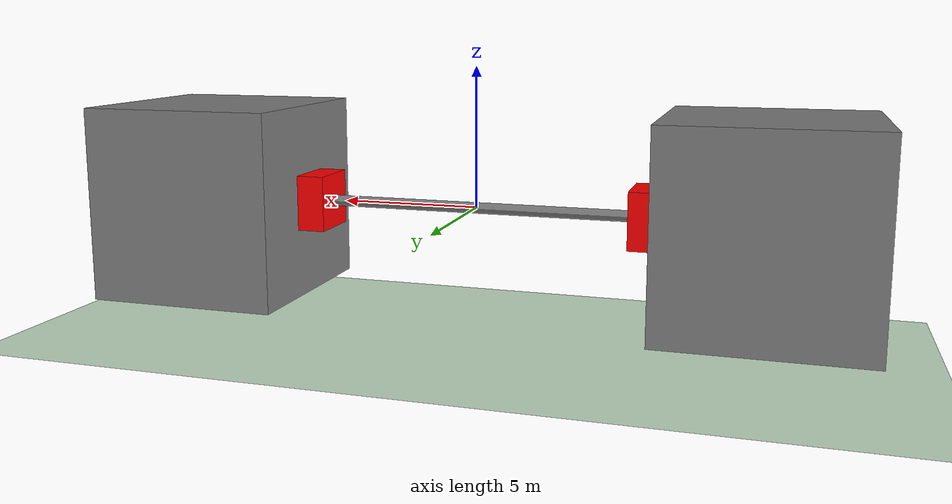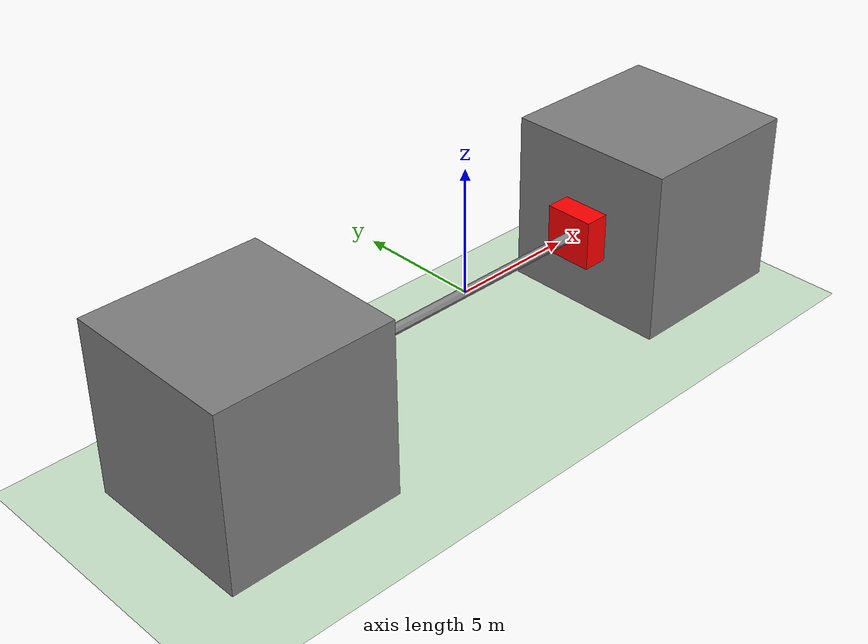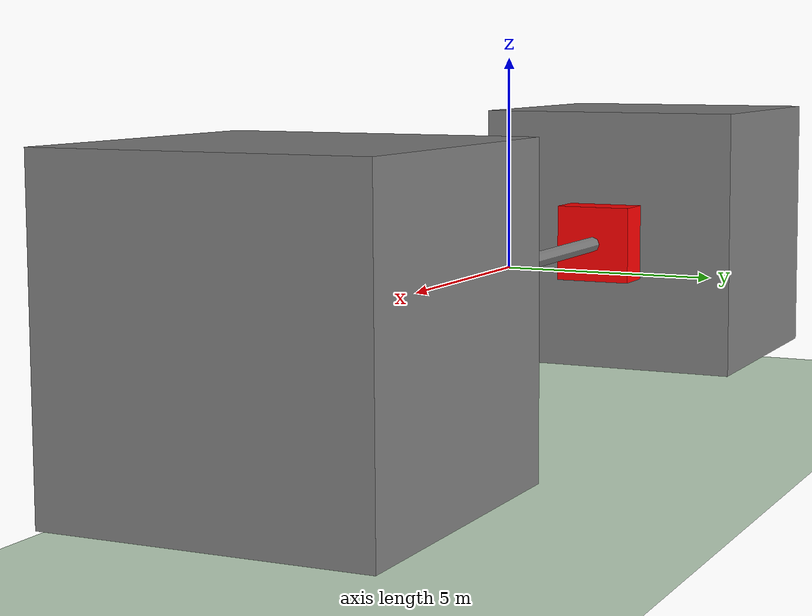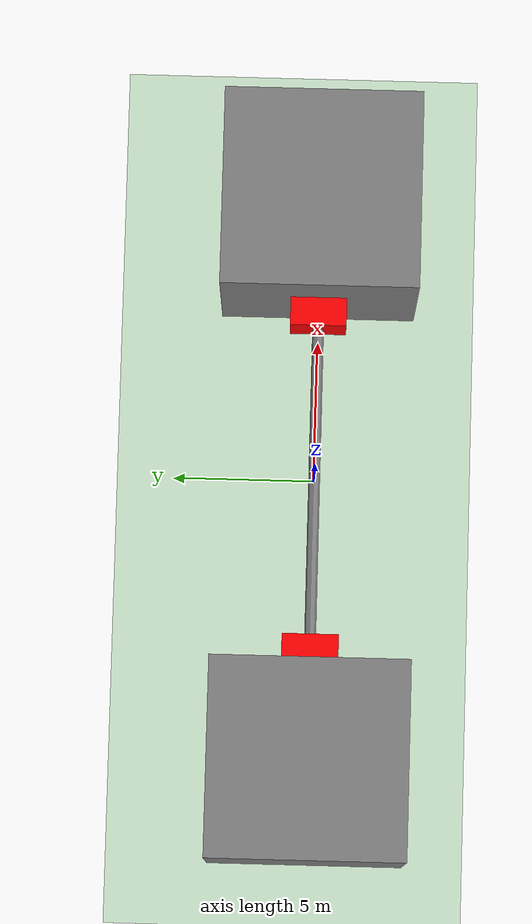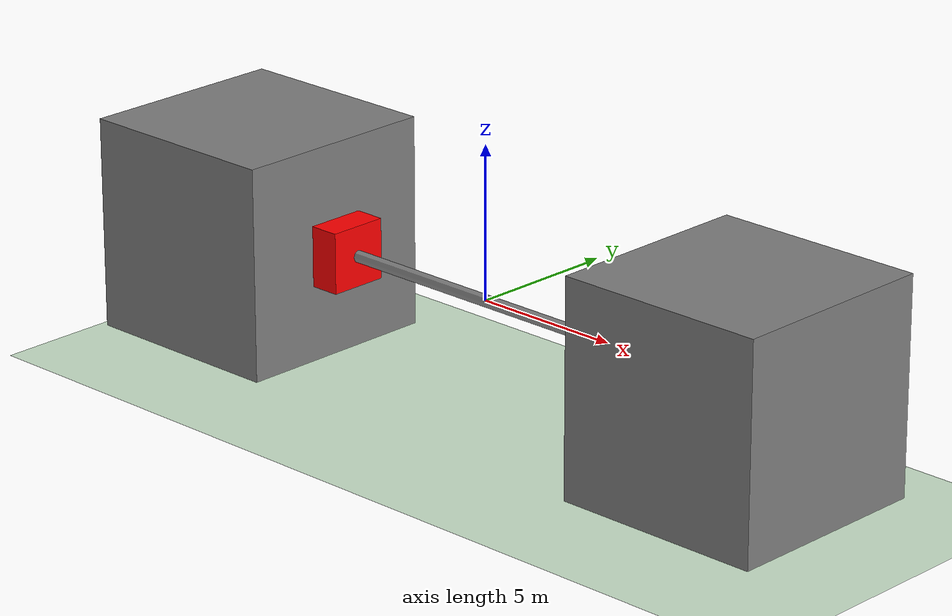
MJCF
<mujoco model="TT (v1.31)">
    <compiler angle="degree" coordinate="local" inertiafromgeom="true">
        <lengthrange timestep="0.001"/>
    </compiler>

    <option timestep="0.001"
            gravity="0 0 -9.81"
            solver="Newton"
            integrator="RK4"
            iterations="100">
        <flag sensornoise="disable"
              warmstart="disable"
              frictionloss="enable"/>
    </option>

    <visual>
        <global offwidth="1024" offheight="768"/>
    </visual>

    <default class='tensegrity'>
        <geom condim="1" material="geom" rgba="1 .84 0 1" size="0.5"
              density="100" friction="0.0001000 0.00010 0" solref="-10000 -20" solimp="0.9 0.95 0.001 0.5 2"/>
        <site type="sphere" size="0.005"/>
        <tendon width="0.05" rgba="1 0 0 1" frictionloss='0' damping="10" stiffness="1000"/>
        <joint type="ball" limited="true" range="0 10" damping="100000" armature="1" />
        <position ctrllimited="true" ctrlrange="-300 100" kp="50"/>
        <default class="cable_length">
            <general gainprm="200 0 0" biasprm="0 -1 0" gaintype="affine" biastype="affine" ctrllimited="true" ctrlrange="0 30"/>
        </default>
        <default class="rod_joint">
            <joint type="ball"  limited="true" range="0 45" pos="0 0 0"/>
        </default>
    </default>

    <asset>
        <texture name='a' builtin="gradient" height="100" rgb1="1 1 1" rgb2="0 0 0" type="skybox"
                 width="100"/>
        <texture builtin="flat" height="1278" mark="cross" markrgb="1 1 1" name="texgeom"
                 random="0.01" rgb1="0.8 0.6 0.4" rgb2="0.8 0.6 0.4" type="cube" width="127"/>
        <texture builtin="checker" height="100" name="texplane" rgb1="0 0 0" rgb2="0.8 0.8 0.8"
                 type="2d" width="100"/>
        <material name="MatPlane" reflectance="0.5" shininess="1" specular="1" texrepeat="30 30"
                  texture="texplane"/>
        <material name="geom" texture="texgeom" texuniform="true"/>
    </asset>

    <worldbody>

        <light name='mylight' cutoff="100" diffuse="1 1 1" dir="-0 0 -1.3" directional="true" exponent="1"
               pos="0 0 1.3" specular=".1 .1 .1"/>
        <geom conaffinity="1" material="MatPlane" name="floor" pos="0 0 -4.5"
              rgba="0.8 0.9 0.8 1" size="400 400 0.1" type="plane"/>

        <camera name="camera" pos="0 -80 50" axisangle="1 0 0 90"/>

        <!-- ======= RODS ======= -->
            <body name="cube0" pos="-10 0 0">
            <freejoint name="freejoint_cube_0"/>
                <geom name="cube0_geom"
                  size="3.5 3.5 3.5"
                  type="box"
                  mass="130"/>
                <site
                    name="cube0_site"
                    type="box"
                    pos="3.5 0 0"
                    rgba="1 0 0 1"
                    size="1 1 1"/>
            </body>
            <body name="cube1" pos="10 0 0">
            <freejoint name="freejoint_cube_1"/>
                <geom name="cube1_geom"
                  size="3.5 3.5 3.5"
                  type="box"
                  mass="130"/>
                <site
                    name="cube1_site"
                    type="box"
                    pos="-3.5 0 0"
                    rgba="1 0 0 1"
                    size="1 1 1"/>
            </body>

    </worldbody>
    <tendon>
        <!-- Tendons on XZ plane -->
        <spatial name="tendon_0_1" width="0.2" damping="5000">
            <site site="cube0_site"/>
            <site site="cube1_site"/>
        </spatial>
    </tendon>
    <actuator>
        <!-- Tendons on XZ plane -->
        <general name="u_01_02" tendon="tendon_0_1" gear="200 0 0 0 0 0"  class="cable_length"/>

    </actuator>
    <sensor>
        <!-- Tendons on XZ plane -->
        <tendonpos name="sensor_01_02" tendon="tendon_0_1" />

    </sensor>
</mujoco>
